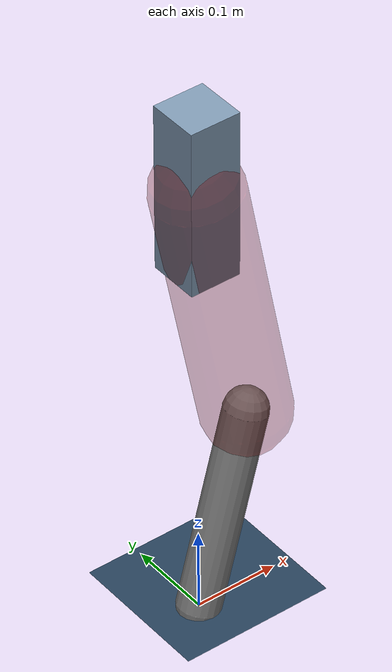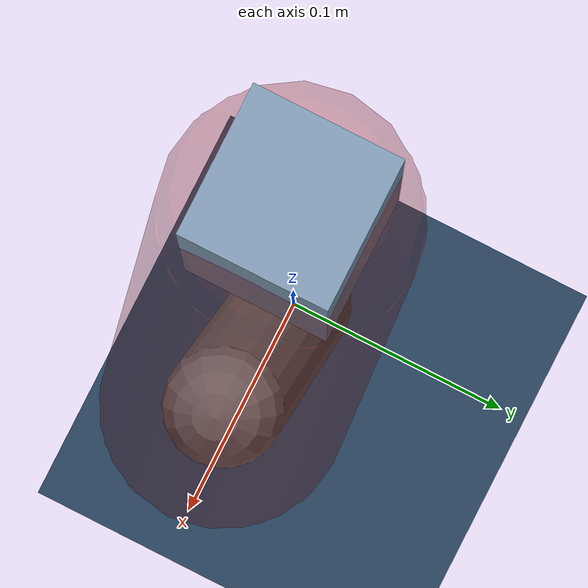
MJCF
<mujoco model="Hopper2D">
	<compiler inertiafromgeom="true" angle="radian" />
	<option timestep="0.001" integrator="implicit" cone="elliptic" solver="Newton" tolerance="1e-10" />

	<default>
		<geom contype="1" conaffinity="1" condim="3" friction="2 0.005 0.0001" solref="0.005 1" />
		<joint limited="true" damping="0.1" />
	</default>

	<asset>
		<texture name="skybox" type="skybox" builtin="gradient" rgb1=".4 .6 .8" rgb2="0 0 0" width="800" height="800" />
		<texture name="grid" type="2d" builtin="checker" rgb1=".1 .2 .3" rgb2=".2 .3 .4" width="300" height="300" mark="edge" markrgb=".2 .3 .4" />
		<material name="ground" texture="grid" texrepeat="1 1" texuniform="true" reflectance="0.1" />
		<material name="leg" rgba="0.5 0.6 0.7 1" />
	</asset>

	<worldbody>

		<geom name="floor" type="plane" size="5 5 0.25" material="ground" />

		<light directional="false" diffuse="0.8 0.8 0.8" specular="0.3 0.3 0.3" pos="0 0 2" dir="0 0 -1" />
		<light mode="targetbodycom" target="base" directional="false" diffuse="0.8 0.8 0.8" specular="0.3 0.3 0.3" pos="0 0 2" dir="0 0 -1" />

		<camera name="fixed" pos="0 -2 1" xyaxes="1 0 0 0 0 1" />
		<camera name="tracking" mode="trackcom" pos="0 -3 1" />

		<body name="root" pos="0 0 0.550694074753113">
			<joint name="slide_x" type="slide" axis="1 0 0" range="-100 100" />
			<joint name="slide_z" type="slide" axis="0 0 1" range="0 10" />

			<body name="base" pos="0 0 0">
				<geom name="torso" type="box" size="0.03 0.03 0.1" mass="3.305" material="leg" />

				<body name="link1" pos="0 0 0" euler="0 1.3742290294097352 0">
					<joint type="hinge" axis="0 -1 0" pos="0 0 0" name="hinge1" limited="true" range="-3.14 3.14" stiffness="0" damping="0.1" />
					<geom name="thigh" type="capsule" fromto="0 0 0 0.31814573760261156 0 0" size="0.05" rgba="0.5 0 0 0.3" mass="1.0381934915270512" />

					<body name="link2" pos="0.31814573760261156 0 0" euler="0 0.4512477812238437 0">
						<joint type="hinge" axis="0 -1 0" pos="0 0 0" name="hinge2" limited="true" range="-3.14 3.14" stiffness="0" damping="0.1" />
						<geom name="shank" type="capsule" fromto="0 0 0 0.2466302865135095 0 0" size="0.025" mass="0.43976725786215853" />

					</body>
				</body>
			</body>
		</body>
	</worldbody>

	<actuator>
		<motor name="torque1" joint="hinge1" ctrlrange="-192.7361227031552 192.7361227031552" ctrllimited="true" gear="1" />
		<motor name="torque2" joint="hinge2" ctrlrange="-35.310526685076695 35.310526685076695" ctrllimited="true" gear="1" />
	</actuator>
</mujoco>
